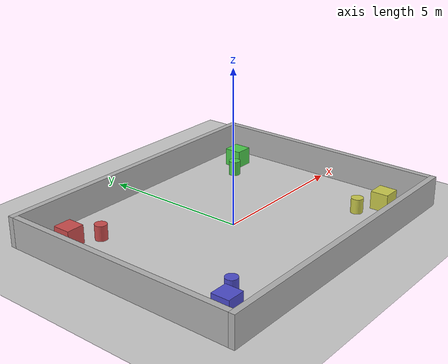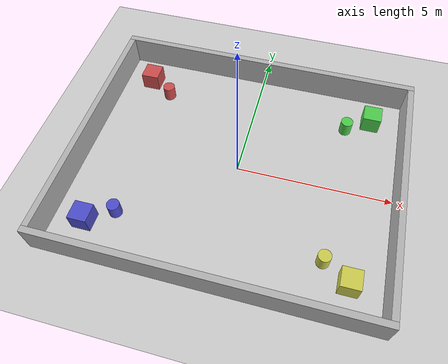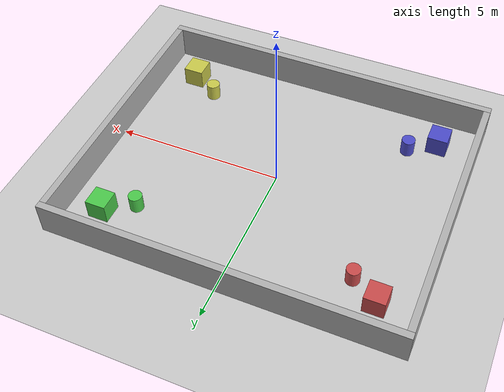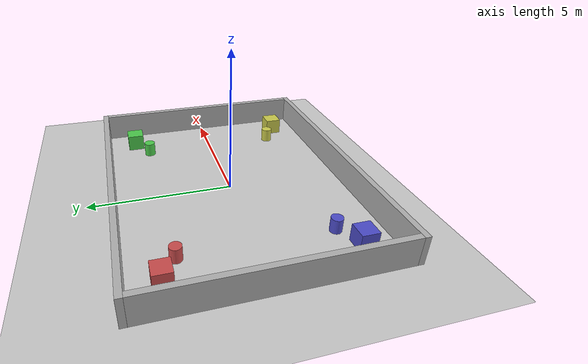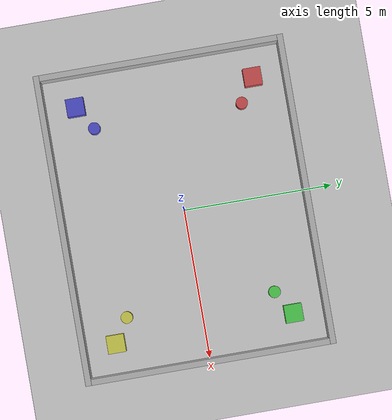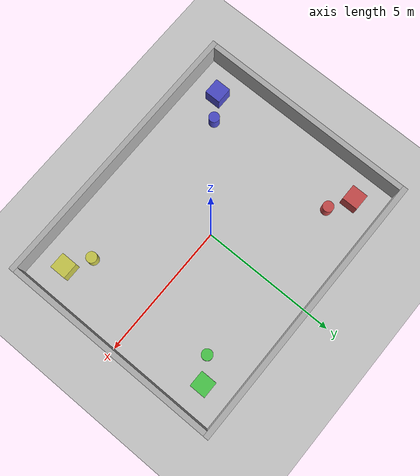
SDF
<?xml version="1.0" ?>
<sdf version="1.8">
  <world name="world_08_corners">
    <!-- Physics -->
    <physics name="1ms" type="ignored">
      <max_step_size>0.001</max_step_size>
      <real_time_factor>1.0</real_time_factor>
    </physics>

    <!-- Plugins -->
    <plugin filename="gz-sim-physics-system" name="gz::sim::systems::Physics"/>
    <plugin filename="gz-sim-user-commands-system" name="gz::sim::systems::UserCommands"/>
    <plugin filename="gz-sim-scene-broadcaster-system" name="gz::sim::systems::SceneBroadcaster"/>
    <plugin filename="gz-sim-sensors-system" name="gz::sim::systems::Sensors">
      <render_engine>ogre2</render_engine>
    </plugin>

    <!-- Lighting -->
    <light type="directional" name="sun">
      <cast_shadows>true</cast_shadows>
      <pose>0 0 10 0 0 0</pose>
      <diffuse>0.8 0.8 0.8 1</diffuse>
      <specular>0.2 0.2 0.2 1</specular>
      <attenuation>
        <range>1000</range>
        <constant>0.9</constant>
        <linear>0.01</linear>
        <quadratic>0.001</quadratic>
      </attenuation>
      <direction>-0.5 0.1 -0.9</direction>
    </light>

    <!-- Ground Plane -->
    <model name="ground_plane">
      <static>true</static>
      <link name="link">
        <collision name="collision">
          <geometry>
            <plane>
              <normal>0 0 1</normal>
              <size>100 100</size>
            </plane>
          </geometry>
        </collision>
        <visual name="visual">
          <geometry>
            <plane>
              <normal>0 0 1</normal>
              <size>100 100</size>
            </plane>
          </geometry>
          <material>
            <ambient>0.8 0.8 0.8 1</ambient>
            <diffuse>0.8 0.8 0.8 1</diffuse>
            <specular>0.8 0.8 0.8 1</specular>
          </material>
        </visual>
      </link>
    </model>

    <!-- Walls - Rectangular arena 10m x 8m -->
    <!-- North Wall -->
    <model name="wall_north">
      <static>true</static>
      <pose>0 4.1 0.5 0 0 0</pose>
      <link name="link">
        <collision name="collision">
          <geometry>
            <box>
              <size>10.4 0.2 1.0</size>
            </box>
          </geometry>
        </collision>
        <visual name="visual">
          <geometry>
            <box>
              <size>10.4 0.2 1.0</size>
            </box>
          </geometry>
          <material>
            <ambient>0.5 0.5 0.5 1</ambient>
            <diffuse>0.7 0.7 0.7 1</diffuse>
            <specular>0.1 0.1 0.1 1</specular>
          </material>
        </visual>
      </link>
    </model>

    <!-- South Wall -->
    <model name="wall_south">
      <static>true</static>
      <pose>0 -4.1 0.5 0 0 0</pose>
      <link name="link">
        <collision name="collision">
          <geometry>
            <box>
              <size>10.4 0.2 1.0</size>
            </box>
          </geometry>
        </collision>
        <visual name="visual">
          <geometry>
            <box>
              <size>10.4 0.2 1.0</size>
            </box>
          </geometry>
          <material>
            <ambient>0.5 0.5 0.5 1</ambient>
            <diffuse>0.7 0.7 0.7 1</diffuse>
            <specular>0.1 0.1 0.1 1</specular>
          </material>
        </visual>
      </link>
    </model>

    <!-- East Wall -->
    <model name="wall_east">
      <static>true</static>
      <pose>5.1 0 0.5 0 0 0</pose>
      <link name="link">
        <collision name="collision">
          <geometry>
            <box>
              <size>0.2 8.0 1.0</size>
            </box>
          </geometry>
        </collision>
        <visual name="visual">
          <geometry>
            <box>
              <size>0.2 8.0 1.0</size>
            </box>
          </geometry>
          <material>
            <ambient>0.5 0.5 0.5 1</ambient>
            <diffuse>0.7 0.7 0.7 1</diffuse>
            <specular>0.1 0.1 0.1 1</specular>
          </material>
        </visual>
      </link>
    </model>

    <!-- West Wall -->
    <model name="wall_west">
      <static>true</static>
      <pose>-5.1 0 0.5 0 0 0</pose>
      <link name="link">
        <collision name="collision">
          <geometry>
            <box>
              <size>0.2 8.0 1.0</size>
            </box>
          </geometry>
        </collision>
        <visual name="visual">
          <geometry>
            <box>
              <size>0.2 8.0 1.0</size>
            </box>
          </geometry>
          <material>
            <ambient>0.5 0.5 0.5 1</ambient>
            <diffuse>0.7 0.7 0.7 1</diffuse>
            <specular>0.1 0.1 0.1 1</specular>
          </material>
        </visual>
      </link>
    </model>

    <!-- Obstacles in corners - leaving center open for navigation -->
    <model name="corner_nw_1">
      <static>true</static>
      <pose>-4.0 3.0 0.3 0 0 0</pose>
      <link name="link">
        <collision name="collision">
          <geometry>
            <box>
              <size>0.6 0.6 0.6</size>
            </box>
          </geometry>
        </collision>
        <visual name="visual">
          <geometry>
            <box>
              <size>0.6 0.6 0.6</size>
            </box>
          </geometry>
          <material>
            <ambient>0.8 0.3 0.3 1</ambient>
            <diffuse>0.8 0.3 0.3 1</diffuse>
            <specular>0.1 0.1 0.1 1</specular>
          </material>
        </visual>
      </link>
    </model>

    <model name="corner_nw_2">
      <static>true</static>
      <pose>-3.2 2.5 0.25 0 0 0</pose>
      <link name="link">
        <collision name="collision">
          <geometry>
            <cylinder>
              <radius>0.2</radius>
              <length>0.5</length>
            </cylinder>
          </geometry>
        </collision>
        <visual name="visual">
          <geometry>
            <cylinder>
              <radius>0.2</radius>
              <length>0.5</length>
            </cylinder>
          </geometry>
          <material>
            <ambient>0.8 0.3 0.3 1</ambient>
            <diffuse>0.8 0.3 0.3 1</diffuse>
            <specular>0.1 0.1 0.1 1</specular>
          </material>
        </visual>
      </link>
    </model>

    <model name="corner_ne_1">
      <static>true</static>
      <pose>4.0 3.0 0.3 0 0 0</pose>
      <link name="link">
        <collision name="collision">
          <geometry>
            <box>
              <size>0.6 0.6 0.6</size>
            </box>
          </geometry>
        </collision>
        <visual name="visual">
          <geometry>
            <box>
              <size>0.6 0.6 0.6</size>
            </box>
          </geometry>
          <material>
            <ambient>0.3 0.8 0.3 1</ambient>
            <diffuse>0.3 0.8 0.3 1</diffuse>
            <specular>0.1 0.1 0.1 1</specular>
          </material>
        </visual>
      </link>
    </model>

    <model name="corner_ne_2">
      <static>true</static>
      <pose>3.2 2.5 0.25 0 0 0</pose>
      <link name="link">
        <collision name="collision">
          <geometry>
            <cylinder>
              <radius>0.2</radius>
              <length>0.5</length>
            </cylinder>
          </geometry>
        </collision>
        <visual name="visual">
          <geometry>
            <cylinder>
              <radius>0.2</radius>
              <length>0.5</length>
            </cylinder>
          </geometry>
          <material>
            <ambient>0.3 0.8 0.3 1</ambient>
            <diffuse>0.3 0.8 0.3 1</diffuse>
            <specular>0.1 0.1 0.1 1</specular>
          </material>
        </visual>
      </link>
    </model>

    <model name="corner_sw_1">
      <static>true</static>
      <pose>-4.0 -3.0 0.3 0 0 0</pose>
      <link name="link">
        <collision name="collision">
          <geometry>
            <box>
              <size>0.6 0.6 0.6</size>
            </box>
          </geometry>
        </collision>
        <visual name="visual">
          <geometry>
            <box>
              <size>0.6 0.6 0.6</size>
            </box>
          </geometry>
          <material>
            <ambient>0.3 0.3 0.8 1</ambient>
            <diffuse>0.3 0.3 0.8 1</diffuse>
            <specular>0.1 0.1 0.1 1</specular>
          </material>
        </visual>
      </link>
    </model>

    <model name="corner_sw_2">
      <static>true</static>
      <pose>-3.2 -2.5 0.25 0 0 0</pose>
      <link name="link">
        <collision name="collision">
          <geometry>
            <cylinder>
              <radius>0.2</radius>
              <length>0.5</length>
            </cylinder>
          </geometry>
        </collision>
        <visual name="visual">
          <geometry>
            <cylinder>
              <radius>0.2</radius>
              <length>0.5</length>
            </cylinder>
          </geometry>
          <material>
            <ambient>0.3 0.3 0.8 1</ambient>
            <diffuse>0.3 0.3 0.8 1</diffuse>
            <specular>0.1 0.1 0.1 1</specular>
          </material>
        </visual>
      </link>
    </model>

    <model name="corner_se_1">
      <static>true</static>
      <pose>4.0 -3.0 0.3 0 0 0</pose>
      <link name="link">
        <collision name="collision">
          <geometry>
            <box>
              <size>0.6 0.6 0.6</size>
            </box>
          </geometry>
        </collision>
        <visual name="visual">
          <geometry>
            <box>
              <size>0.6 0.6 0.6</size>
            </box>
          </geometry>
          <material>
            <ambient>0.8 0.8 0.3 1</ambient>
            <diffuse>0.8 0.8 0.3 1</diffuse>
            <specular>0.1 0.1 0.1 1</specular>
          </material>
        </visual>
      </link>
    </model>

    <model name="corner_se_2">
      <static>true</static>
      <pose>3.2 -2.5 0.25 0 0 0</pose>
      <link name="link">
        <collision name="collision">
          <geometry>
            <cylinder>
              <radius>0.2</radius>
              <length>0.5</length>
            </cylinder>
          </geometry>
        </collision>
        <visual name="visual">
          <geometry>
            <cylinder>
              <radius>0.2</radius>
              <length>0.5</length>
            </cylinder>
          </geometry>
          <material>
            <ambient>0.8 0.8 0.3 1</ambient>
            <diffuse>0.8 0.8 0.3 1</diffuse>
            <specular>0.1 0.1 0.1 1</specular>
          </material>
        </visual>
      </link>
    </model>

  </world>
</sdf>
